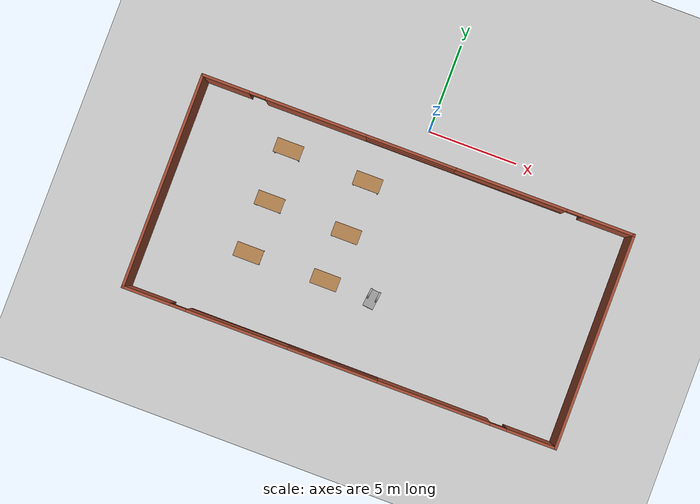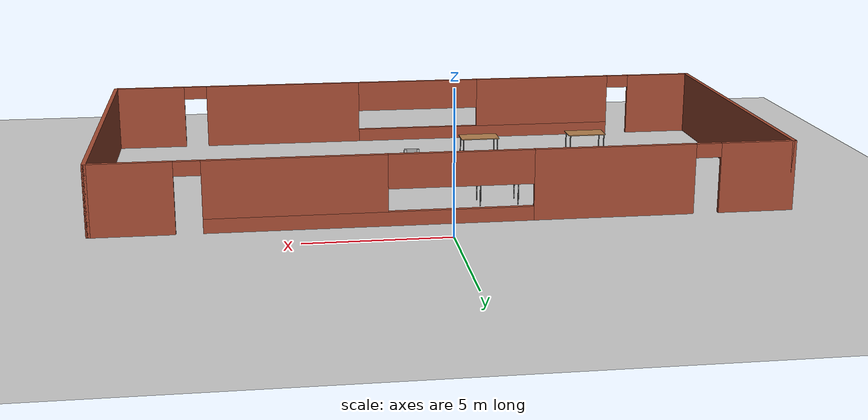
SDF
<sdf version="1.6">
 <world name="default">
  <model name="ground_plane">
   <static>1</static>
   <link name="link">
    <collision name="collision">
     <geometry><plane><normal>0 0 1</normal><size>100 100</size></plane></geometry>
     <surface><friction><ode><mu>100</mu><mu2>50</mu2></ode></friction></surface>
    </collision>
    <visual name="visual">
     <cast_shadows>0</cast_shadows>
     <geometry><plane><normal>0 0 1</normal><size>100 100</size></plane></geometry>
     <material>
      <script><uri>file://media/materials/scripts/gazebo.material</uri><name>Gazebo/Grey</name></script>
     </material>
    </visual>
   </link>
  </model>
  <model name="Building">
   <pose>-0.123507 -7.53127 0 0 -0 0</pose>
   <link name="Wall_19">
    <pose>0 5.925 0 0 -0 0</pose>
    <visual name="Wall_19_Visual_0">
     <pose>-10.7783 0 1.25 0 -0 0</pose>
     <geometry><box><size>2.69331 0.15 2.5</size></box></geometry>
     <material>
      <script><uri>file://media/materials/scripts/gazebo.material</uri><name>Gazebo/Bricks</name></script>
      <ambient>1 1 1 1</ambient>
     </material>
     <meta><layer>0</layer></meta>
    </visual>
    <collision name="Wall_19_Collision_0">
     <geometry><box><size>2.69331 0.15 2.5</size></box></geometry>
     <pose>-10.7783 0 1.25 0 -0 0</pose>
    </collision>
    <visual name="Wall_19_Visual_1">
     <pose>-5.70413 0 1.25 0 -0 0</pose>
     <geometry><box><size>5.65511 0.15 2.5</size></box></geometry>
     <material>
      <script><uri>file://media/materials/scripts/gazebo.material</uri><name>Gazebo/Bricks</name></script>
      <ambient>1 1 1 1</ambient>
     </material>
     <meta><layer>0</layer></meta>
    </visual>
    <collision name="Wall_19_Collision_1">
     <geometry><box><size>5.65511 0.15 2.5</size></box></geometry>
     <pose>-5.70413 0 1.25 0 -0 0</pose>
    </collision>
    <visual name="Wall_19_Visual_2">
     <pose>10.6641 0 1.25 0 -0 0</pose>
     <geometry><box><size>2.92177 0.15 2.5</size></box></geometry>
     <material>
      <script><uri>file://media/materials/scripts/gazebo.material</uri><name>Gazebo/Bricks</name></script>
      <ambient>1 1 1 1</ambient>
     </material>
     <meta><layer>0</layer></meta>
    </visual>
    <collision name="Wall_19_Collision_2">
     <geometry><box><size>2.92177 0.15 2.5</size></box></geometry>
     <pose>10.6641 0 1.25 0 -0 0</pose>
    </collision>
    <visual name="Wall_19_Visual_3">
     <pose>2.71333 0 0.25 0 -0 0</pose>
     <geometry><box><size>11.1798 0.15 0.5</size></box></geometry>
     <material>
      <script><uri>file://media/materials/scripts/gazebo.material</uri><name>Gazebo/Bricks</name></script>
      <ambient>1 1 1 1</ambient>
     </material>
     <meta><layer>0</layer></meta>
    </visual>
    <collision name="Wall_19_Collision_3">
     <geometry><box><size>11.1798 0.15 0.5</size></box></geometry>
     <pose>2.71333 0 0.25 0 -0 0</pose>
    </collision>
    <visual name="Wall_19_Visual_4">
     <pose>5.21333 0 1.5 0 -0 0</pose>
     <geometry><box><size>6.17981 0.15 2</size></box></geometry>
     <material>
      <script><uri>file://media/materials/scripts/gazebo.material</uri><name>Gazebo/Bricks</name></script>
      <ambient>1 1 1 1</ambient>
     </material>
     <meta><layer>0</layer></meta>
    </visual>
    <collision name="Wall_19_Collision_4">
     <geometry><box><size>6.17981 0.15 2</size></box></geometry>
     <pose>5.21333 0 1.5 0 -0 0</pose>
    </collision>
    <visual name="Wall_19_Visual_5">
     <pose>-0.376579 0 1.9 0 -0 0</pose>
     <geometry><box><size>5 0.15 1.2</size></box></geometry>
     <material>
      <script><uri>file://media/materials/scripts/gazebo.material</uri><name>Gazebo/Bricks</name></script>
      <ambient>1 1 1 1</ambient>
     </material>
     <meta><layer>0</layer></meta>
    </visual>
    <collision name="Wall_19_Collision_5">
     <geometry><box><size>5 0.15 1.2</size></box></geometry>
     <pose>-0.376579 0 1.9 0 -0 0</pose>
    </collision>
    <visual name="Wall_19_Visual_6">
     <pose>-8.98169 0 2.25 0 -0 0</pose>
     <geometry><box><size>0.9 0.15 0.5</size></box></geometry>
     <material>
      <script><uri>file://media/materials/scripts/gazebo.material</uri><name>Gazebo/Bricks</name></script>
      <ambient>1 1 1 1</ambient>
     </material>
     <meta><layer>0</layer></meta>
    </visual>
    <collision name="Wall_19_Collision_6">
     <geometry><box><size>0.9 0.15 0.5</size></box></geometry>
     <pose>-8.98169 0 2.25 0 -0 0</pose>
    </collision>
    <visual name="Wall_19_Visual_7">
     <pose>8.75323 0 2.25 0 -0 0</pose>
     <geometry><box><size>0.9 0.15 0.5</size></box></geometry>
     <material>
      <script><uri>file://media/materials/scripts/gazebo.material</uri><name>Gazebo/Bricks</name></script>
      <ambient>1 1 1 1</ambient>
     </material>
     <meta><layer>0</layer></meta>
    </visual>
    <collision name="Wall_19_Collision_7">
     <geometry><box><size>0.9 0.15 0.5</size></box></geometry>
     <pose>8.75323 0 2.25 0 -0 0</pose>
    </collision>
   </link>
   <link name="Wall_20">
    <collision name="Wall_20_Collision">
     <geometry><box><size>12 0.15 2.5</size></box></geometry>
     <pose>0 0 1.25 0 -0 0</pose>
    </collision>
    <visual name="Wall_20_Visual">
     <pose>0 0 1.25 0 -0 0</pose>
     <geometry><box><size>12 0.15 2.5</size></box></geometry>
     <material>
      <script><uri>file://media/materials/scripts/gazebo.material</uri><name>Gazebo/Bricks</name></script>
      <ambient>1 1 1 1</ambient>
     </material>
     <meta><layer>0</layer></meta>
    </visual>
    <pose>12.05 0 0 0 0 -1.5708</pose>
   </link>
   <link name="Wall_21">
    <pose>0 -5.925 0 0 -0 3.14159</pose>
    <visual name="Wall_21_Visual_0">
     <pose>-10.7166 0 1.25 0 -0 0</pose>
     <geometry><box><size>2.81683 0.15 2.5</size></box></geometry>
     <material>
      <script><uri>file://media/materials/scripts/gazebo.material</uri><name>Gazebo/Bricks</name></script>
      <ambient>1 1 1 1</ambient>
     </material>
     <meta><layer>0</layer></meta>
    </visual>
    <collision name="Wall_21_Collision_0">
     <geometry><box><size>2.81683 0.15 2.5</size></box></geometry>
     <pose>-10.7166 0 1.25 0 -0 0</pose>
    </collision>
    <visual name="Wall_21_Visual_1">
     <pose>-5.2658 0 1.25 0 -0 0</pose>
     <geometry><box><size>6.28475 0.15 2.5</size></box></geometry>
     <material>
      <script><uri>file://media/materials/scripts/gazebo.material</uri><name>Gazebo/Bricks</name></script>
      <ambient>1 1 1 1</ambient>
     </material>
     <meta><layer>0</layer></meta>
    </visual>
    <collision name="Wall_21_Collision_1">
     <geometry><box><size>6.28475 0.15 2.5</size></box></geometry>
     <pose>-5.2658 0 1.25 0 -0 0</pose>
    </collision>
    <visual name="Wall_21_Visual_2">
     <pose>10.7783 0 1.25 0 -0 0</pose>
     <geometry><box><size>2.69331 0.15 2.5</size></box></geometry>
     <material>
      <script><uri>file://media/materials/scripts/gazebo.material</uri><name>Gazebo/Bricks</name></script>
      <ambient>1 1 1 1</ambient>
     </material>
     <meta><layer>0</layer></meta>
    </visual>
    <collision name="Wall_21_Collision_2">
     <geometry><box><size>2.69331 0.15 2.5</size></box></geometry>
     <pose>10.7783 0 1.25 0 -0 0</pose>
    </collision>
    <visual name="Wall_21_Visual_3">
     <pose>3.20413 0 0.25 0 -0 0</pose>
     <geometry><box><size>10.6551 0.15 0.5</size></box></geometry>
     <material>
      <script><uri>file://media/materials/scripts/gazebo.material</uri><name>Gazebo/Bricks</name></script>
      <ambient>1 1 1 1</ambient>
     </material>
     <meta><layer>0</layer></meta>
    </visual>
    <collision name="Wall_21_Collision_3">
     <geometry><box><size>10.6551 0.15 0.5</size></box></geometry>
     <pose>3.20413 0 0.25 0 -0 0</pose>
    </collision>
    <visual name="Wall_21_Visual_4">
     <pose>5.70413 0 1.5 0 -0 0</pose>
     <geometry><box><size>5.65511 0.15 2</size></box></geometry>
     <material>
      <script><uri>file://media/materials/scripts/gazebo.material</uri><name>Gazebo/Bricks</name></script>
      <ambient>1 1 1 1</ambient>
     </material>
     <meta><layer>0</layer></meta>
    </visual>
    <collision name="Wall_21_Collision_4">
     <geometry><box><size>5.65511 0.15 2</size></box></geometry>
     <pose>5.70413 0 1.5 0 -0 0</pose>
    </collision>
    <visual name="Wall_21_Visual_5">
     <pose>0.376579 0 1.9 0 -0 0</pose>
     <geometry><box><size>5 0.15 1.2</size></box></geometry>
     <material>
      <script><uri>file://media/materials/scripts/gazebo.material</uri><name>Gazebo/Bricks</name></script>
      <ambient>1 1 1 1</ambient>
     </material>
     <meta><layer>0</layer></meta>
    </visual>
    <collision name="Wall_21_Collision_5">
     <geometry><box><size>5 0.15 1.2</size></box></geometry>
     <pose>0.376579 0 1.9 0 -0 0</pose>
    </collision>
    <visual name="Wall_21_Visual_6">
     <pose>-8.85817 0 2.25 0 -0 0</pose>
     <geometry><box><size>0.9 0.15 0.5</size></box></geometry>
     <material>
      <script><uri>file://media/materials/scripts/gazebo.material</uri><name>Gazebo/Bricks</name></script>
      <ambient>1 1 1 1</ambient>
     </material>
     <meta><layer>0</layer></meta>
    </visual>
    <collision name="Wall_21_Collision_6">
     <geometry><box><size>0.9 0.15 0.5</size></box></geometry>
     <pose>-8.85817 0 2.25 0 -0 0</pose>
    </collision>
    <visual name="Wall_21_Visual_7">
     <pose>8.98169 0 2.25 0 -0 0</pose>
     <geometry><box><size>0.9 0.15 0.5</size></box></geometry>
     <material>
      <script><uri>file://media/materials/scripts/gazebo.material</uri><name>Gazebo/Bricks</name></script>
      <ambient>1 1 1 1</ambient>
     </material>
     <meta><layer>0</layer></meta>
    </visual>
    <collision name="Wall_21_Collision_7">
     <geometry><box><size>0.9 0.15 0.5</size></box></geometry>
     <pose>8.98169 0 2.25 0 -0 0</pose>
    </collision>
   </link>
   <link name="Wall_22">
    <collision name="Wall_22_Collision">
     <geometry><box><size>12 0.15 2.5</size></box></geometry>
     <pose>0 0 1.25 0 -0 0</pose>
    </collision>
    <visual name="Wall_22_Visual">
     <pose>0 0 1.25 0 -0 0</pose>
     <geometry><box><size>12 0.15 2.5</size></box></geometry>
     <material>
      <script><uri>file://media/materials/scripts/gazebo.material</uri><name>Gazebo/Bricks</name></script>
      <ambient>1 1 1 1</ambient>
     </material>
     <meta><layer>0</layer></meta>
    </visual>
    <pose>-12.05 0 0 0 -0 1.5708</pose>
   </link>
   <static>1</static>
  </model>
  <model name="table">
   <static>1</static>
   <link name="link">
    <collision name="surface">
     <pose>0 0 1 0 -0 0</pose>
     <geometry><box><size>1.5 0.8 0.03</size></box></geometry>
     <surface><friction><ode><mu>0.6</mu><mu2>0.6</mu2></ode></friction></surface>
    </collision>
    <visual name="visual1">
     <pose>0 0 1 0 -0 0</pose>
     <geometry><box><size>1.5 0.8 0.03</size></box></geometry>
     <material>
      <script><uri>file://media/materials/scripts/gazebo.material</uri><name>Gazebo/Wood</name></script>
     </material>
    </visual>
    <collision name="front_left_leg">
     <pose>0.68 0.38 0.5 0 -0 0</pose>
     <geometry><cylinder><radius>0.02</radius><length>1</length></cylinder></geometry>
    </collision>
    <visual name="front_left_leg">
     <pose>0.68 0.38 0.5 0 -0 0</pose>
     <geometry><cylinder><radius>0.02</radius><length>1</length></cylinder></geometry>
     <material>
      <script><uri>file://media/materials/scripts/gazebo.material</uri><name>Gazebo/Grey</name></script>
     </material>
    </visual>
    <collision name="front_right_leg">
     <pose>0.68 -0.38 0.5 0 -0 0</pose>
     <geometry><cylinder><radius>0.02</radius><length>1</length></cylinder></geometry>
    </collision>
    <visual name="front_right_leg">
     <pose>0.68 -0.38 0.5 0 -0 0</pose>
     <geometry><cylinder><radius>0.02</radius><length>1</length></cylinder></geometry>
     <material>
      <script><uri>file://media/materials/scripts/gazebo.material</uri><name>Gazebo/Grey</name></script>
     </material>
    </visual>
    <collision name="back_right_leg">
     <pose>-0.68 -0.38 0.5 0 -0 0</pose>
     <geometry><cylinder><radius>0.02</radius><length>1</length></cylinder></geometry>
    </collision>
    <visual name="back_right_leg">
     <pose>-0.68 -0.38 0.5 0 -0 0</pose>
     <geometry><cylinder><radius>0.02</radius><length>1</length></cylinder></geometry>
     <material>
      <script><uri>file://media/materials/scripts/gazebo.material</uri><name>Gazebo/Grey</name></script>
     </material>
    </visual>
    <collision name="back_left_leg">
     <pose>-0.68 0.38 0.5 0 -0 0</pose>
     <geometry><cylinder><radius>0.02</radius><length>1</length></cylinder></geometry>
    </collision>
    <visual name="back_left_leg">
     <pose>-0.68 0.38 0.5 0 -0 0</pose>
     <geometry><cylinder><radius>0.02</radius><length>1</length></cylinder></geometry>
     <material>
      <script><uri>file://media/materials/scripts/gazebo.material</uri><name>Gazebo/Grey</name></script>
     </material>
    </visual>
   </link>
   <pose>-6.76939 -9.53641 0 0 -0 0</pose>
  </model>
  <model name="table_clone">
   <static>1</static>
   <link name="link">
    <collision name="surface">
     <pose>0 0 1 0 -0 0</pose>
     <geometry><box><size>1.5 0.8 0.03</size></box></geometry>
     <surface><friction><ode><mu>0.6</mu><mu2>0.6</mu2></ode></friction></surface>
    </collision>
    <visual name="visual1">
     <pose>0 0 1 0 -0 0</pose>
     <geometry><box><size>1.5 0.8 0.03</size></box></geometry>
     <material>
      <script><uri>file://media/materials/scripts/gazebo.material</uri><name>Gazebo/Wood</name></script>
     </material>
    </visual>
    <collision name="front_left_leg">
     <pose>0.68 0.38 0.5 0 -0 0</pose>
     <geometry><cylinder><radius>0.02</radius><length>1</length></cylinder></geometry>
    </collision>
    <visual name="front_left_leg">
     <pose>0.68 0.38 0.5 0 -0 0</pose>
     <geometry><cylinder><radius>0.02</radius><length>1</length></cylinder></geometry>
     <material>
      <script><uri>file://media/materials/scripts/gazebo.material</uri><name>Gazebo/Grey</name></script>
     </material>
    </visual>
    <collision name="front_right_leg">
     <pose>0.68 -0.38 0.5 0 -0 0</pose>
     <geometry><cylinder><radius>0.02</radius><length>1</length></cylinder></geometry>
    </collision>
    <visual name="front_right_leg">
     <pose>0.68 -0.38 0.5 0 -0 0</pose>
     <geometry><cylinder><radius>0.02</radius><length>1</length></cylinder></geometry>
     <material>
      <script><uri>file://media/materials/scripts/gazebo.material</uri><name>Gazebo/Grey</name></script>
     </material>
    </visual>
    <collision name="back_right_leg">
     <pose>-0.68 -0.38 0.5 0 -0 0</pose>
     <geometry><cylinder><radius>0.02</radius><length>1</length></cylinder></geometry>
    </collision>
    <visual name="back_right_leg">
     <pose>-0.68 -0.38 0.5 0 -0 0</pose>
     <geometry><cylinder><radius>0.02</radius><length>1</length></cylinder></geometry>
     <material>
      <script><uri>file://media/materials/scripts/gazebo.material</uri><name>Gazebo/Grey</name></script>
     </material>
    </visual>
    <collision name="back_left_leg">
     <pose>-0.68 0.38 0.5 0 -0 0</pose>
     <geometry><cylinder><radius>0.02</radius><length>1</length></cylinder></geometry>
    </collision>
    <visual name="back_left_leg">
     <pose>-0.68 0.38 0.5 0 -0 0</pose>
     <geometry><cylinder><radius>0.02</radius><length>1</length></cylinder></geometry>
     <material>
      <script><uri>file://media/materials/scripts/gazebo.material</uri><name>Gazebo/Grey</name></script>
     </material>
    </visual>
   </link>
   <pose>-6.68139 -6.57304 0 0 -0 0</pose>
  </model>
  <model name="table_clone_clone">
   <static>1</static>
   <link name="link">
    <collision name="surface">
     <pose>0 0 1 0 -0 0</pose>
     <geometry><box><size>1.5 0.8 0.03</size></box></geometry>
     <surface><friction><ode><mu>0.6</mu><mu2>0.6</mu2></ode></friction></surface>
    </collision>
    <visual name="visual1">
     <pose>0 0 1 0 -0 0</pose>
     <geometry><box><size>1.5 0.8 0.03</size></box></geometry>
     <material>
      <script><uri>file://media/materials/scripts/gazebo.material</uri><name>Gazebo/Wood</name></script>
     </material>
    </visual>
    <collision name="front_left_leg">
     <pose>0.68 0.38 0.5 0 -0 0</pose>
     <geometry><cylinder><radius>0.02</radius><length>1</length></cylinder></geometry>
    </collision>
    <visual name="front_left_leg">
     <pose>0.68 0.38 0.5 0 -0 0</pose>
     <geometry><cylinder><radius>0.02</radius><length>1</length></cylinder></geometry>
     <material>
      <script><uri>file://media/materials/scripts/gazebo.material</uri><name>Gazebo/Grey</name></script>
     </material>
    </visual>
    <collision name="front_right_leg">
     <pose>0.68 -0.38 0.5 0 -0 0</pose>
     <geometry><cylinder><radius>0.02</radius><length>1</length></cylinder></geometry>
    </collision>
    <visual name="front_right_leg">
     <pose>0.68 -0.38 0.5 0 -0 0</pose>
     <geometry><cylinder><radius>0.02</radius><length>1</length></cylinder></geometry>
     <material>
      <script><uri>file://media/materials/scripts/gazebo.material</uri><name>Gazebo/Grey</name></script>
     </material>
    </visual>
    <collision name="back_right_leg">
     <pose>-0.68 -0.38 0.5 0 -0 0</pose>
     <geometry><cylinder><radius>0.02</radius><length>1</length></cylinder></geometry>
    </collision>
    <visual name="back_right_leg">
     <pose>-0.68 -0.38 0.5 0 -0 0</pose>
     <geometry><cylinder><radius>0.02</radius><length>1</length></cylinder></geometry>
     <material>
      <script><uri>file://media/materials/scripts/gazebo.material</uri><name>Gazebo/Grey</name></script>
     </material>
    </visual>
    <collision name="back_left_leg">
     <pose>-0.68 0.38 0.5 0 -0 0</pose>
     <geometry><cylinder><radius>0.02</radius><length>1</length></cylinder></geometry>
    </collision>
    <visual name="back_left_leg">
     <pose>-0.68 0.38 0.5 0 -0 0</pose>
     <geometry><cylinder><radius>0.02</radius><length>1</length></cylinder></geometry>
     <material>
      <script><uri>file://media/materials/scripts/gazebo.material</uri><name>Gazebo/Grey</name></script>
     </material>
    </visual>
   </link>
   <pose>-6.72226 -3.59223 0 0 -0 0</pose>
  </model>
  <model name="table_clone_clone_0">
   <static>1</static>
   <link name="link">
    <collision name="surface">
     <pose>0 0 1 0 -0 0</pose>
     <geometry><box><size>1.5 0.8 0.03</size></box></geometry>
     <surface><friction><ode><mu>0.6</mu><mu2>0.6</mu2></ode></friction></surface>
    </collision>
    <visual name="visual1">
     <pose>0 0 1 0 -0 0</pose>
     <geometry><box><size>1.5 0.8 0.03</size></box></geometry>
     <material>
      <script><uri>file://media/materials/scripts/gazebo.material</uri><name>Gazebo/Wood</name></script>
     </material>
    </visual>
    <collision name="front_left_leg">
     <pose>0.68 0.38 0.5 0 -0 0</pose>
     <geometry><cylinder><radius>0.02</radius><length>1</length></cylinder></geometry>
    </collision>
    <visual name="front_left_leg">
     <pose>0.68 0.38 0.5 0 -0 0</pose>
     <geometry><cylinder><radius>0.02</radius><length>1</length></cylinder></geometry>
     <material>
      <script><uri>file://media/materials/scripts/gazebo.material</uri><name>Gazebo/Grey</name></script>
     </material>
    </visual>
    <collision name="front_right_leg">
     <pose>0.68 -0.38 0.5 0 -0 0</pose>
     <geometry><cylinder><radius>0.02</radius><length>1</length></cylinder></geometry>
    </collision>
    <visual name="front_right_leg">
     <pose>0.68 -0.38 0.5 0 -0 0</pose>
     <geometry><cylinder><radius>0.02</radius><length>1</length></cylinder></geometry>
     <material>
      <script><uri>file://media/materials/scripts/gazebo.material</uri><name>Gazebo/Grey</name></script>
     </material>
    </visual>
    <collision name="back_right_leg">
     <pose>-0.68 -0.38 0.5 0 -0 0</pose>
     <geometry><cylinder><radius>0.02</radius><length>1</length></cylinder></geometry>
    </collision>
    <visual name="back_right_leg">
     <pose>-0.68 -0.38 0.5 0 -0 0</pose>
     <geometry><cylinder><radius>0.02</radius><length>1</length></cylinder></geometry>
     <material>
      <script><uri>file://media/materials/scripts/gazebo.material</uri><name>Gazebo/Grey</name></script>
     </material>
    </visual>
    <collision name="back_left_leg">
     <pose>-0.68 0.38 0.5 0 -0 0</pose>
     <geometry><cylinder><radius>0.02</radius><length>1</length></cylinder></geometry>
    </collision>
    <visual name="back_left_leg">
     <pose>-0.68 0.38 0.5 0 -0 0</pose>
     <geometry><cylinder><radius>0.02</radius><length>1</length></cylinder></geometry>
     <material>
      <script><uri>file://media/materials/scripts/gazebo.material</uri><name>Gazebo/Grey</name></script>
     </material>
    </visual>
   </link>
   <pose>-2.43738 -9.45721 0 0 -0 0</pose>
  </model>
  <model name="table_clone_clone_1">
   <static>1</static>
   <link name="link">
    <collision name="surface">
     <pose>0 0 1 0 -0 0</pose>
     <geometry><box><size>1.5 0.8 0.03</size></box></geometry>
     <surface><friction><ode><mu>0.6</mu><mu2>0.6</mu2></ode></friction></surface>
    </collision>
    <visual name="visual1">
     <pose>0 0 1 0 -0 0</pose>
     <geometry><box><size>1.5 0.8 0.03</size></box></geometry>
     <material>
      <script><uri>file://media/materials/scripts/gazebo.material</uri><name>Gazebo/Wood</name></script>
     </material>
    </visual>
    <collision name="front_left_leg">
     <pose>0.68 0.38 0.5 0 -0 0</pose>
     <geometry><cylinder><radius>0.02</radius><length>1</length></cylinder></geometry>
    </collision>
    <visual name="front_left_leg">
     <pose>0.68 0.38 0.5 0 -0 0</pose>
     <geometry><cylinder><radius>0.02</radius><length>1</length></cylinder></geometry>
     <material>
      <script><uri>file://media/materials/scripts/gazebo.material</uri><name>Gazebo/Grey</name></script>
     </material>
    </visual>
    <collision name="front_right_leg">
     <pose>0.68 -0.38 0.5 0 -0 0</pose>
     <geometry><cylinder><radius>0.02</radius><length>1</length></cylinder></geometry>
    </collision>
    <visual name="front_right_leg">
     <pose>0.68 -0.38 0.5 0 -0 0</pose>
     <geometry><cylinder><radius>0.02</radius><length>1</length></cylinder></geometry>
     <material>
      <script><uri>file://media/materials/scripts/gazebo.material</uri><name>Gazebo/Grey</name></script>
     </material>
    </visual>
    <collision name="back_right_leg">
     <pose>-0.68 -0.38 0.5 0 -0 0</pose>
     <geometry><cylinder><radius>0.02</radius><length>1</length></cylinder></geometry>
    </collision>
    <visual name="back_right_leg">
     <pose>-0.68 -0.38 0.5 0 -0 0</pose>
     <geometry><cylinder><radius>0.02</radius><length>1</length></cylinder></geometry>
     <material>
      <script><uri>file://media/materials/scripts/gazebo.material</uri><name>Gazebo/Grey</name></script>
     </material>
    </visual>
    <collision name="back_left_leg">
     <pose>-0.68 0.38 0.5 0 -0 0</pose>
     <geometry><cylinder><radius>0.02</radius><length>1</length></cylinder></geometry>
    </collision>
    <visual name="back_left_leg">
     <pose>-0.68 0.38 0.5 0 -0 0</pose>
     <geometry><cylinder><radius>0.02</radius><length>1</length></cylinder></geometry>
     <material>
      <script><uri>file://media/materials/scripts/gazebo.material</uri><name>Gazebo/Grey</name></script>
     </material>
    </visual>
   </link>
   <pose>-2.26026 -6.71884 0 0 -0 0</pose>
  </model>
  <model name="table_clone_clone_2">
   <static>1</static>
   <link name="link">
    <collision name="surface">
     <pose>0 0 1 0 -0 0</pose>
     <geometry><box><size>1.5 0.8 0.03</size></box></geometry>
     <surface><friction><ode><mu>0.6</mu><mu2>0.6</mu2></ode></friction></surface>
    </collision>
    <visual name="visual1">
     <pose>0 0 1 0 -0 0</pose>
     <geometry><box><size>1.5 0.8 0.03</size></box></geometry>
     <material>
      <script><uri>file://media/materials/scripts/gazebo.material</uri><name>Gazebo/Wood</name></script>
     </material>
    </visual>
    <collision name="front_left_leg">
     <pose>0.68 0.38 0.5 0 -0 0</pose>
     <geometry><cylinder><radius>0.02</radius><length>1</length></cylinder></geometry>
    </collision>
    <visual name="front_left_leg">
     <pose>0.68 0.38 0.5 0 -0 0</pose>
     <geometry><cylinder><radius>0.02</radius><length>1</length></cylinder></geometry>
     <material>
      <script><uri>file://media/materials/scripts/gazebo.material</uri><name>Gazebo/Grey</name></script>
     </material>
    </visual>
    <collision name="front_right_leg">
     <pose>0.68 -0.38 0.5 0 -0 0</pose>
     <geometry><cylinder><radius>0.02</radius><length>1</length></cylinder></geometry>
    </collision>
    <visual name="front_right_leg">
     <pose>0.68 -0.38 0.5 0 -0 0</pose>
     <geometry><cylinder><radius>0.02</radius><length>1</length></cylinder></geometry>
     <material>
      <script><uri>file://media/materials/scripts/gazebo.material</uri><name>Gazebo/Grey</name></script>
     </material>
    </visual>
    <collision name="back_right_leg">
     <pose>-0.68 -0.38 0.5 0 -0 0</pose>
     <geometry><cylinder><radius>0.02</radius><length>1</length></cylinder></geometry>
    </collision>
    <visual name="back_right_leg">
     <pose>-0.68 -0.38 0.5 0 -0 0</pose>
     <geometry><cylinder><radius>0.02</radius><length>1</length></cylinder></geometry>
     <material>
      <script><uri>file://media/materials/scripts/gazebo.material</uri><name>Gazebo/Grey</name></script>
     </material>
    </visual>
    <collision name="back_left_leg">
     <pose>-0.68 0.38 0.5 0 -0 0</pose>
     <geometry><cylinder><radius>0.02</radius><length>1</length></cylinder></geometry>
    </collision>
    <visual name="back_left_leg">
     <pose>-0.68 0.38 0.5 0 -0 0</pose>
     <geometry><cylinder><radius>0.02</radius><length>1</length></cylinder></geometry>
     <material>
      <script><uri>file://media/materials/scripts/gazebo.material</uri><name>Gazebo/Grey</name></script>
     </material>
    </visual>
   </link>
   <pose>-2.14162 -3.77176 0.007759 0 -0 0</pose>
  </model>
  <model name="robot_0_clone">
   <link name="link_0">
    <pose>-0.012293 0.007298 0.050001 0 -0 0</pose>
    <inertial>
     <mass>1</mass>
     <inertia>
      <ixx>0.166667</ixx>
      <ixy>0</ixy>
      <ixz>0</ixz>
      <iyy>0.166667</iyy>
      <iyz>0</iyz>
      <izz>0.166667</izz>
     </inertia>
    </inertial>
    <visual name="visual">
     <geometry><box><size>1 0.6 0.2</size></box></geometry>
     <material>
      <lighting>1</lighting>
      <script><uri>file://media/materials/scripts/gazebo.material</uri><name>Gazebo/Grey</name></script>
      <ambient>0.3 0.3 0.3 1</ambient>
      <diffuse>0.7 0.7 0.7 1</diffuse>
      <specular>0.01 0.01 0.01 1</specular>
      <emissive>0 0 0 1</emissive>
      <shader type="vertex"><normal_map>__default__</normal_map></shader>
     </material>
    </visual>
    <collision name="collision">
     <geometry><box><size>1 0.6 0.2</size></box></geometry>
     <surface>
      <friction>
       <ode><mu>1</mu><mu2>1</mu2><fdir1>0 0 0</fdir1><slip1>0</slip1><slip2>0</slip2></ode>
       <torsional>
        <coefficient>1</coefficient>
        <patch_radius>0</patch_radius>
        <surface_radius>0</surface_radius>
        <use_patch_radius>1</use_patch_radius>
        <ode><slip>0</slip></ode>
       </torsional>
      </friction>
      <bounce><restitution_coefficient>0</restitution_coefficient><threshold>1e+06</threshold></bounce>
      <contact>
       <collide_without_contact>0</collide_without_contact>
       <collide_without_contact_bitmask>1</collide_without_contact_bitmask>
       <collide_bitmask>1</collide_bitmask>
       <ode>
        <soft_cfm>0</soft_cfm>
        <soft_erp>0.2</soft_erp>
        <kp>1e+13</kp>
        <kd>1</kd>
        <max_vel>0.01</max_vel>
        <min_depth>0</min_depth>
       </ode>
       <bullet>
        <split_impulse>1</split_impulse>
        <split_impulse_penetration_threshold>-0.01</split_impulse_penetration_threshold>
        <soft_cfm>0</soft_cfm>
        <soft_erp>0.2</soft_erp>
        <kp>1e+13</kp>
        <kd>1</kd>
       </bullet>
      </contact>
     </surface>
    </collision>
   </link>
   <link name="link_2">
    <pose>0.212296 0.252677 0.069997 1.5707 -0 0</pose>
    <inertial>
     <mass>1</mass>
     <inertia><ixx>0.145833</ixx><ixy>0</ixy><ixz>0</ixz><iyy>0.145833</iyy><iyz>0</iyz><izz>0.125</izz></inertia>
     <pose>0 0 0 1.5707 -0 0</pose>
    </inertial>
    <visual name="visual">
     <geometry><cylinder><radius>0.3</radius><length>0.1</length></cylinder></geometry>
     <material>
      <lighting>1</lighting>
      <script><uri>file://media/materials/scripts/gazebo.material</uri><name>Gazebo/Grey</name></script>
      <ambient>0.3 0.3 0.3 1</ambient>
      <diffuse>0.7 0.7 0.7 1</diffuse>
      <specular>0.01 0.01 0.01 1</specular>
      <emissive>0 0 0 1</emissive>
      <shader type="vertex"><normal_map>__default__</normal_map></shader>
     </material>
    </visual>
    <collision name="collision">
     <geometry><cylinder><radius>0.3</radius><length>0.1</length></cylinder></geometry>
     <surface>
      <friction>
       <ode><mu>1</mu><mu2>1</mu2><fdir1>0 0 0</fdir1><slip1>0</slip1><slip2>0</slip2></ode>
       <torsional>
        <coefficient>1</coefficient>
        <patch_radius>0</patch_radius>
        <surface_radius>0</surface_radius>
        <use_patch_radius>1</use_patch_radius>
        <ode><slip>0</slip></ode>
       </torsional>
      </friction>
      <bounce><restitution_coefficient>0</restitution_coefficient><threshold>1e+06</threshold></bounce>
      <contact>
       <collide_without_contact>0</collide_without_contact>
       <collide_without_contact_bitmask>1</collide_without_contact_bitmask>
       <collide_bitmask>1</collide_bitmask>
       <ode>
        <soft_cfm>0</soft_cfm>
        <soft_erp>0.2</soft_erp>
        <kp>1e+13</kp>
        <kd>1</kd>
        <max_vel>0.01</max_vel>
        <min_depth>0</min_depth>
       </ode>
       <bullet>
        <split_impulse>1</split_impulse>
        <split_impulse_penetration_threshold>-0.01</split_impulse_penetration_threshold>
        <soft_cfm>0</soft_cfm>
        <soft_erp>0.2</soft_erp>
        <kp>1e+13</kp>
        <kd>1</kd>
       </bullet>
      </contact>
     </surface>
    </collision>
   </link>
   <link name="link_2_clone">
    <pose>0.212296 -0.247265 0.070001 1.5707 -0 0</pose>
    <inertial>
     <mass>1</mass>
     <inertia><ixx>0.145833</ixx><ixy>0</ixy><ixz>0</ixz><iyy>0.145833</iyy><iyz>0</iyz><izz>0.125</izz></inertia>
     <pose>0 0 0 1.5707 -0 0</pose>
    </inertial>
    <visual name="visual">
     <geometry><cylinder><radius>0.3</radius><length>0.1</length></cylinder></geometry>
     <material>
      <lighting>1</lighting>
      <script><uri>file://media/materials/scripts/gazebo.material</uri><name>Gazebo/Grey</name></script>
      <ambient>0.3 0.3 0.3 1</ambient>
      <diffuse>0.7 0.7 0.7 1</diffuse>
      <specular>0.01 0.01 0.01 1</specular>
      <emissive>0 0 0 1</emissive>
      <shader type="vertex"><normal_map>__default__</normal_map></shader>
     </material>
    </visual>
    <collision name="collision">
     <geometry><cylinder><radius>0.3</radius><length>0.1</length></cylinder></geometry>
     <surface>
      <friction>
       <ode><mu>1</mu><mu2>1</mu2><fdir1>0 0 0</fdir1><slip1>0</slip1><slip2>0</slip2></ode>
       <torsional>
        <coefficient>1</coefficient>
        <patch_radius>0</patch_radius>
        <surface_radius>0</surface_radius>
        <use_patch_radius>1</use_patch_radius>
        <ode><slip>0</slip></ode>
       </torsional>
      </friction>
      <bounce><restitution_coefficient>0</restitution_coefficient><threshold>1e+06</threshold></bounce>
      <contact>
       <collide_without_contact>0</collide_without_contact>
       <collide_without_contact_bitmask>1</collide_without_contact_bitmask>
       <collide_bitmask>1</collide_bitmask>
       <ode>
        <soft_cfm>0</soft_cfm>
        <soft_erp>0.2</soft_erp>
        <kp>1e+13</kp>
        <kd>1</kd>
        <max_vel>0.01</max_vel>
        <min_depth>0</min_depth>
       </ode>
       <bullet>
        <split_impulse>1</split_impulse>
        <split_impulse_penetration_threshold>-0.01</split_impulse_penetration_threshold>
        <soft_cfm>0</soft_cfm>
        <soft_erp>0.2</soft_erp>
        <kp>1e+13</kp>
        <kd>1</kd>
       </bullet>
      </contact>
     </surface>
    </collision>
   </link>
   <link name="link_3">
    <pose>-0.412293 -0.012702 -0.189999 0 -0 0</pose>
    <inertial>
     <mass>1</mass>
     <inertia><ixx>0.1</ixx><ixy>0</ixy><ixz>0</ixz><iyy>0.1</iyy><iyz>0</iyz><izz>0.1</izz></inertia>
    </inertial>
    <visual name="visual">
     <geometry><sphere><radius>0.1</radius></sphere></geometry>
     <material>
      <lighting>1</lighting>
      <script><uri>file://media/materials/scripts/gazebo.material</uri><name>Gazebo/Grey</name></script>
      <ambient>0.3 0.3 0.3 1</ambient>
      <diffuse>0.7 0.7 0.7 1</diffuse>
      <specular>0.01 0.01 0.01 1</specular>
      <emissive>0 0 0 1</emissive>
      <shader type="vertex"><normal_map>__default__</normal_map></shader>
     </material>
    </visual>
    <collision name="collision">
     <geometry><sphere><radius>0.1</radius></sphere></geometry>
     <surface>
      <friction>
       <ode><mu>1</mu><mu2>1</mu2><fdir1>0 0 0</fdir1><slip1>0</slip1><slip2>0</slip2></ode>
       <torsional>
        <coefficient>1</coefficient>
        <patch_radius>0</patch_radius>
        <surface_radius>0</surface_radius>
        <use_patch_radius>1</use_patch_radius>
        <ode><slip>0</slip></ode>
       </torsional>
      </friction>
      <bounce><restitution_coefficient>0</restitution_coefficient><threshold>1e+06</threshold></bounce>
      <contact>
       <collide_without_contact>0</collide_without_contact>
       <collide_without_contact_bitmask>1</collide_without_contact_bitmask>
       <collide_bitmask>1</collide_bitmask>
       <ode>
        <soft_cfm>0</soft_cfm>
        <soft_erp>0.2</soft_erp>
        <kp>1e+13</kp>
        <kd>1</kd>
        <max_vel>0.01</max_vel>
        <min_depth>0</min_depth>
       </ode>
       <bullet>
        <split_impulse>1</split_impulse>
        <split_impulse_penetration_threshold>-0.01</split_impulse_penetration_threshold>
        <soft_cfm>0</soft_cfm>
        <soft_erp>0.2</soft_erp>
        <kp>1e+13</kp>
        <kd>1</kd>
       </bullet>
      </contact>
     </surface>
    </collision>
   </link>
   <joint name="link_0_JOINT_0" type="revolute">
    <parent>link_0</parent>
    <child>link_2</child>
    <axis>
     <xyz>0 0 1</xyz>
     <use_parent_model_frame>0</use_parent_model_frame>
     <limit>
      <lower>-1.79769e+308</lower>
      <upper>1.79769e+308</upper>
      <effort>-1</effort>
      <velocity>-1</velocity>
     </limit>
     <dynamics>
      <spring_reference>0</spring_reference>
      <spring_stiffness>0</spring_stiffness>
      <damping>0</damping>
     </dynamics>
    </axis>
    <physics>
     <ode><limit><cfm>0</cfm><erp>0.2</erp></limit><suspension><cfm>0</cfm><erp>0.2</erp></suspension></ode>
    </physics>
   </joint>
   <joint name="link_0_JOINT_1" type="revolute">
    <parent>link_0</parent>
    <child>link_2_clone</child>
    <axis>
     <xyz>0 0 1</xyz>
     <use_parent_model_frame>0</use_parent_model_frame>
     <limit>
      <lower>-1.79769e+308</lower>
      <upper>1.79769e+308</upper>
      <effort>-1</effort>
      <velocity>-1</velocity>
     </limit>
     <dynamics>
      <spring_reference>0</spring_reference>
      <spring_stiffness>0</spring_stiffness>
      <damping>0</damping>
     </dynamics>
    </axis>
    <physics>
     <ode><limit><cfm>0</cfm><erp>0.2</erp></limit><suspension><cfm>0</cfm><erp>0.2</erp></suspension></ode>
    </physics>
   </joint>
   <joint name="link_0_JOINT_2" type="ball">
    <parent>link_0</parent>
    <child>link_3</child>
    <physics>
     <ode><limit><cfm>0</cfm><erp>0.2</erp></limit><suspension><cfm>0</cfm><erp>0.2</erp></suspension></ode>
    </physics>
   </joint>
   <static>0</static>
   <pose>0.24597 -9.5436 0.250311 1.5e-05 0.094332 1.46296</pose>
  </model>
 </world>
</sdf>
